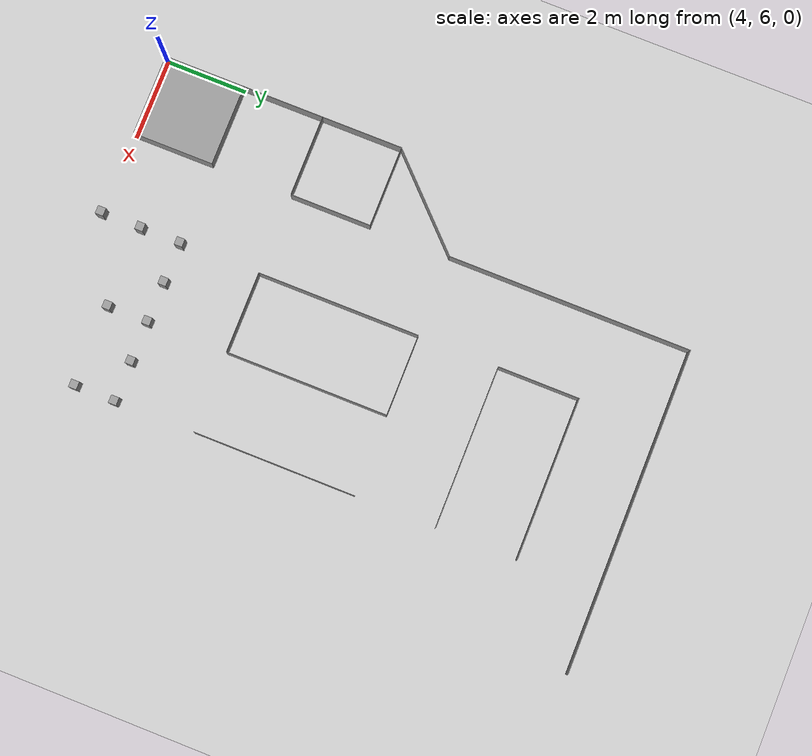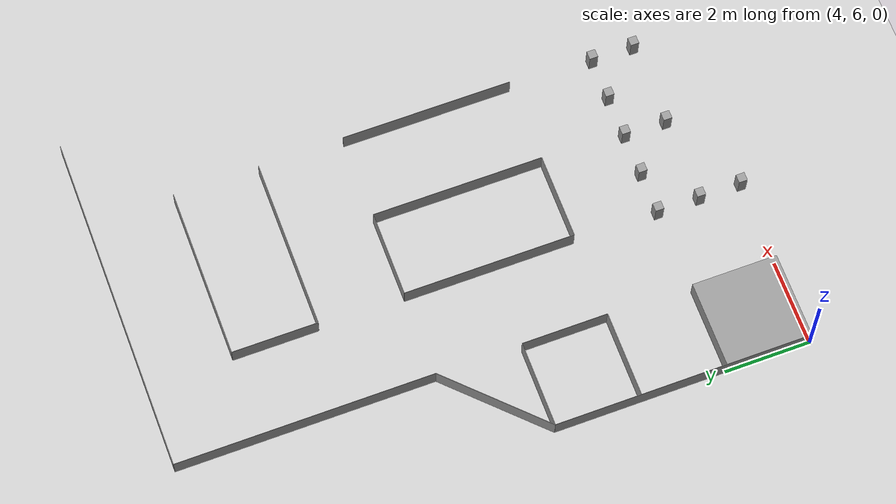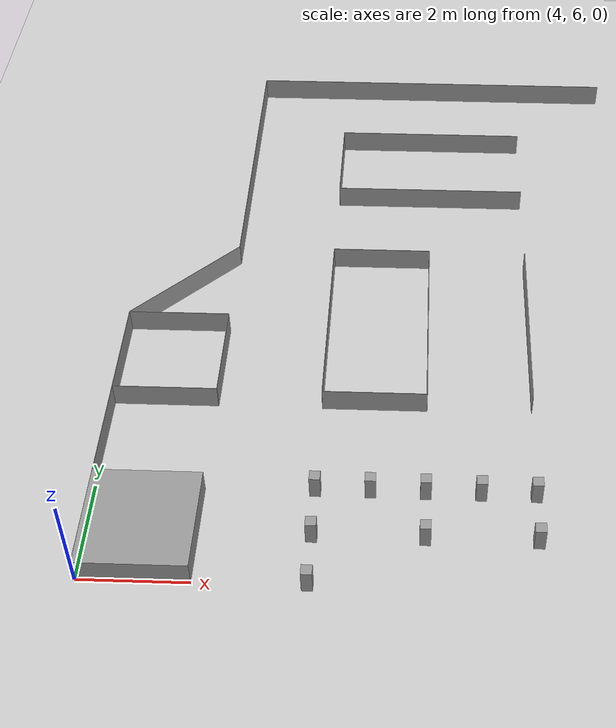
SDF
<sdf version="1.6">
 <world name="default">
  <model name="box_97">
   <pose>5.0 7.0 0.25 0 0 0</pose>
   <link name="link">
    <inertial>
     <mass>1</mass>
     <inertia><ixx>0</ixx><ixy>0</ixy><ixz>0</ixz><iyy>0</iyy><iyz>0</iyz><izz>0</izz></inertia>
    </inertial>
    <collision name="collision"><geometry><box><size>2.0 2.0 0.5</size></box></geometry></collision>
    <visual name="visual">
     <geometry><box><size>2.0 2.0 0.5</size></box></geometry>
     <material>
      <script><name>Gazebo/Grey</name><uri>file://media/materials/scripts/gazebo.material</uri></script>
     </material>
    </visual>
   </link>
   <static>1</static>
  </model>
  <model name="box_77">
   <pose>12.0 7.0 0.25 0 0 0</pose>
   <link name="link">
    <inertial>
     <mass>1</mass>
     <inertia><ixx>0</ixx><ixy>0</ixy><ixz>0</ixz><iyy>0</iyy><iyz>0</iyz><izz>0</izz></inertia>
    </inertial>
    <collision name="collision"><geometry><box><size>0.2 0.2 0.5</size></box></geometry></collision>
    <visual name="visual">
     <geometry><box><size>0.2 0.2 0.5</size></box></geometry>
     <material>
      <script><name>Gazebo/Grey</name><uri>file://media/materials/scripts/gazebo.material</uri></script>
     </material>
    </visual>
   </link>
   <static>1</static>
  </model>
  <model name="box_76">
   <pose>10.0 7.0 0.25 0 0 0</pose>
   <link name="link">
    <inertial>
     <mass>1</mass>
     <inertia><ixx>0</ixx><ixy>0</ixy><ixz>0</ixz><iyy>0</iyy><iyz>0</iyz><izz>0</izz></inertia>
    </inertial>
    <collision name="collision"><geometry><box><size>0.2 0.2 0.5</size></box></geometry></collision>
    <visual name="visual">
     <geometry><box><size>0.2 0.2 0.5</size></box></geometry>
     <material>
      <script><name>Gazebo/Grey</name><uri>file://media/materials/scripts/gazebo.material</uri></script>
     </material>
    </visual>
   </link>
   <static>1</static>
  </model>
  <model name="box_75">
   <pose>12.0 8.0 0.25 0 0 0</pose>
   <link name="link">
    <inertial>
     <mass>1</mass>
     <inertia><ixx>0</ixx><ixy>0</ixy><ixz>0</ixz><iyy>0</iyy><iyz>0</iyz><izz>0</izz></inertia>
    </inertial>
    <collision name="collision"><geometry><box><size>0.2 0.2 0.5</size></box></geometry></collision>
    <visual name="visual">
     <geometry><box><size>0.2 0.2 0.5</size></box></geometry>
     <material>
      <script><name>Gazebo/Grey</name><uri>file://media/materials/scripts/gazebo.material</uri></script>
     </material>
    </visual>
   </link>
   <static>1</static>
  </model>
  <model name="box_74">
   <pose>11.0 8.0 0.25 0 0 0</pose>
   <link name="link">
    <inertial>
     <mass>1</mass>
     <inertia><ixx>0</ixx><ixy>0</ixy><ixz>0</ixz><iyy>0</iyy><iyz>0</iyz><izz>0</izz></inertia>
    </inertial>
    <collision name="collision"><geometry><box><size>0.2 0.2 0.5</size></box></geometry></collision>
    <visual name="visual">
     <geometry><box><size>0.2 0.2 0.5</size></box></geometry>
     <material>
      <script><name>Gazebo/Grey</name><uri>file://media/materials/scripts/gazebo.material</uri></script>
     </material>
    </visual>
   </link>
   <static>1</static>
  </model>
  <model name="box_73">
   <pose>10.0 8.0 0.25 0 0 0</pose>
   <link name="link">
    <inertial>
     <mass>1</mass>
     <inertia><ixx>0</ixx><ixy>0</ixy><ixz>0</ixz><iyy>0</iyy><iyz>0</iyz><izz>0</izz></inertia>
    </inertial>
    <collision name="collision"><geometry><box><size>0.2 0.2 0.5</size></box></geometry></collision>
    <visual name="visual">
     <geometry><box><size>0.2 0.2 0.5</size></box></geometry>
     <material>
      <script><name>Gazebo/Grey</name><uri>file://media/materials/scripts/gazebo.material</uri></script>
     </material>
    </visual>
   </link>
   <static>1</static>
  </model>
  <model name="box_38">
   <pose>8.0 6.0 0.25 0 0 0</pose>
   <link name="link">
    <inertial>
     <mass>1</mass>
     <inertia><ixx>0</ixx><ixy>0</ixy><ixz>0</ixz><iyy>0</iyy><iyz>0</iyz><izz>0</izz></inertia>
    </inertial>
    <collision name="collision"><geometry><box><size>0.2 0.2 0.5</size></box></geometry></collision>
    <visual name="visual">
     <geometry><box><size>0.2 0.2 0.5</size></box></geometry>
     <material>
      <script><name>Gazebo/Grey</name><uri>file://media/materials/scripts/gazebo.material</uri></script>
     </material>
    </visual>
   </link>
   <static>1</static>
  </model>
  <model name="box_37">
   <pose>10.0 7.0 0.25 0 0 0</pose>
   <link name="link">
    <inertial>
     <mass>1</mass>
     <inertia><ixx>0</ixx><ixy>0</ixy><ixz>0</ixz><iyy>0</iyy><iyz>0</iyz><izz>0</izz></inertia>
    </inertial>
    <collision name="collision"><geometry><box><size>0.2 0.2 0.5</size></box></geometry></collision>
    <visual name="visual">
     <geometry><box><size>0.2 0.2 0.5</size></box></geometry>
     <material>
      <script><name>Gazebo/Grey</name><uri>file://media/materials/scripts/gazebo.material</uri></script>
     </material>
    </visual>
   </link>
   <static>1</static>
  </model>
  <model name="box_36">
   <pose>8.0 7.0 0.25 0 0 0</pose>
   <link name="link">
    <inertial>
     <mass>1</mass>
     <inertia><ixx>0</ixx><ixy>0</ixy><ixz>0</ixz><iyy>0</iyy><iyz>0</iyz><izz>0</izz></inertia>
    </inertial>
    <collision name="collision"><geometry><box><size>0.2 0.2 0.5</size></box></geometry></collision>
    <visual name="visual">
     <geometry><box><size>0.2 0.2 0.5</size></box></geometry>
     <material>
      <script><name>Gazebo/Grey</name><uri>file://media/materials/scripts/gazebo.material</uri></script>
     </material>
    </visual>
   </link>
   <static>1</static>
  </model>
  <model name="box_35">
   <pose>10.0 8.0 0.25 0 0 0</pose>
   <link name="link">
    <inertial>
     <mass>1</mass>
     <inertia><ixx>0</ixx><ixy>0</ixy><ixz>0</ixz><iyy>0</iyy><iyz>0</iyz><izz>0</izz></inertia>
    </inertial>
    <collision name="collision"><geometry><box><size>0.2 0.2 0.5</size></box></geometry></collision>
    <visual name="visual">
     <geometry><box><size>0.2 0.2 0.5</size></box></geometry>
     <material>
      <script><name>Gazebo/Grey</name><uri>file://media/materials/scripts/gazebo.material</uri></script>
     </material>
    </visual>
   </link>
   <static>1</static>
  </model>
  <model name="box_34">
   <pose>9.0 8.0 0.25 0 0 0</pose>
   <link name="link">
    <inertial>
     <mass>1</mass>
     <inertia><ixx>0</ixx><ixy>0</ixy><ixz>0</ixz><iyy>0</iyy><iyz>0</iyz><izz>0</izz></inertia>
    </inertial>
    <collision name="collision"><geometry><box><size>0.2 0.2 0.5</size></box></geometry></collision>
    <visual name="visual">
     <geometry><box><size>0.2 0.2 0.5</size></box></geometry>
     <material>
      <script><name>Gazebo/Grey</name><uri>file://media/materials/scripts/gazebo.material</uri></script>
     </material>
    </visual>
   </link>
   <static>1</static>
  </model>
  <model name="box_33">
   <pose>8.0 8.0 0.25 0 0 0</pose>
   <link name="link">
    <inertial>
     <mass>1</mass>
     <inertia><ixx>0</ixx><ixy>0</ixy><ixz>0</ixz><iyy>0</iyy><iyz>0</iyz><izz>0</izz></inertia>
    </inertial>
    <collision name="collision"><geometry><box><size>0.2 0.2 0.5</size></box></geometry></collision>
    <visual name="visual">
     <geometry><box><size>0.2 0.2 0.5</size></box></geometry>
     <material>
      <script><name>Gazebo/Grey</name><uri>file://media/materials/scripts/gazebo.material</uri></script>
     </material>
    </visual>
   </link>
   <static>1</static>
  </model>
  <model name="box_32">
   <pose>5.0 10.0 0.25 0 0 -0.0</pose>
   <link name="link">
    <inertial>
     <mass>1</mass>
     <inertia><ixx>0</ixx><ixy>0</ixy><ixz>0</ixz><iyy>0</iyy><iyz>0</iyz><izz>0</izz></inertia>
    </inertial>
    <collision name="collision"><geometry><box><size>2.0 0.01 0.5</size></box></geometry></collision>
    <visual name="visual">
     <geometry><box><size>2.0 0.01 0.5</size></box></geometry>
     <material>
      <script><name>Gazebo/Grey</name><uri>file://media/materials/scripts/gazebo.material</uri></script>
     </material>
    </visual>
   </link>
   <static>1</static>
  </model>
  <model name="box_31">
   <pose>6.0 11.0 0.25 0 0 1.5707963267948966</pose>
   <link name="link">
    <inertial>
     <mass>1</mass>
     <inertia><ixx>0</ixx><ixy>0</ixy><ixz>0</ixz><iyy>0</iyy><iyz>0</iyz><izz>0</izz></inertia>
    </inertial>
    <collision name="collision"><geometry><box><size>2.0 0.01 0.5</size></box></geometry></collision>
    <visual name="visual">
     <geometry><box><size>2.0 0.01 0.5</size></box></geometry>
     <material>
      <script><name>Gazebo/Grey</name><uri>file://media/materials/scripts/gazebo.material</uri></script>
     </material>
    </visual>
   </link>
   <static>1</static>
  </model>
  <model name="box_30">
   <pose>5.0 12.0 0.25 0 0 -3.141592653589793</pose>
   <link name="link">
    <inertial>
     <mass>1</mass>
     <inertia><ixx>0</ixx><ixy>0</ixy><ixz>0</ixz><iyy>0</iyy><iyz>0</iyz><izz>0</izz></inertia>
    </inertial>
    <collision name="collision"><geometry><box><size>2.0 0.01 0.5</size></box></geometry></collision>
    <visual name="visual">
     <geometry><box><size>2.0 0.01 0.5</size></box></geometry>
     <material>
      <script><name>Gazebo/Grey</name><uri>file://media/materials/scripts/gazebo.material</uri></script>
     </material>
    </visual>
   </link>
   <static>1</static>
  </model>
  <model name="box_29">
   <pose>10.0 18.0 0.25 0 0 -0.0</pose>
   <link name="link">
    <inertial>
     <mass>1</mass>
     <inertia><ixx>0</ixx><ixy>0</ixy><ixz>0</ixz><iyy>0</iyy><iyz>0</iyz><izz>0</izz></inertia>
    </inertial>
    <collision name="collision"><geometry><box><size>4.0 0.01 0.5</size></box></geometry></collision>
    <visual name="visual">
     <geometry><box><size>4.0 0.01 0.5</size></box></geometry>
     <material>
      <script><name>Gazebo/Grey</name><uri>file://media/materials/scripts/gazebo.material</uri></script>
     </material>
    </visual>
   </link>
   <static>1</static>
  </model>
  <model name="box_27">
   <pose>10.0 16.0 0.25 0 0 -3.141592653589793</pose>
   <link name="link">
    <inertial>
     <mass>1</mass>
     <inertia><ixx>0</ixx><ixy>0</ixy><ixz>0</ixz><iyy>0</iyy><iyz>0</iyz><izz>0</izz></inertia>
    </inertial>
    <collision name="collision"><geometry><box><size>4.0 0.01 0.5</size></box></geometry></collision>
    <visual name="visual">
     <geometry><box><size>4.0 0.01 0.5</size></box></geometry>
     <material>
      <script><name>Gazebo/Grey</name><uri>file://media/materials/scripts/gazebo.material</uri></script>
     </material>
    </visual>
   </link>
   <static>1</static>
  </model>
  <model name="box_26">
   <pose>8.0 17.0 0.25 0 0 1.5707963267948966</pose>
   <link name="link">
    <inertial>
     <mass>1</mass>
     <inertia><ixx>0</ixx><ixy>0</ixy><ixz>0</ixz><iyy>0</iyy><iyz>0</iyz><izz>0</izz></inertia>
    </inertial>
    <collision name="collision"><geometry><box><size>2.0 0.01 0.5</size></box></geometry></collision>
    <visual name="visual">
     <geometry><box><size>2.0 0.01 0.5</size></box></geometry>
     <material>
      <script><name>Gazebo/Grey</name><uri>file://media/materials/scripts/gazebo.material</uri></script>
     </material>
    </visual>
   </link>
   <static>1</static>
  </model>
  <model name="box_25">
   <pose>9.0 14.0 0.25 0 0 -0.0</pose>
   <link name="link">
    <inertial>
     <mass>1</mass>
     <inertia><ixx>0</ixx><ixy>0</ixy><ixz>0</ixz><iyy>0</iyy><iyz>0</iyz><izz>0</izz></inertia>
    </inertial>
    <collision name="collision"><geometry><box><size>2.0 0.01 0.5</size></box></geometry></collision>
    <visual name="visual">
     <geometry><box><size>2.0 0.01 0.5</size></box></geometry>
     <material>
      <script><name>Gazebo/Grey</name><uri>file://media/materials/scripts/gazebo.material</uri></script>
     </material>
    </visual>
   </link>
   <static>1</static>
  </model>
  <model name="box_24">
   <pose>10.0 12.0 0.25 0 0 -1.5707963267948966</pose>
   <link name="link">
    <inertial>
     <mass>1</mass>
     <inertia><ixx>0</ixx><ixy>0</ixy><ixz>0</ixz><iyy>0</iyy><iyz>0</iyz><izz>0</izz></inertia>
    </inertial>
    <collision name="collision"><geometry><box><size>4.0 0.01 0.5</size></box></geometry></collision>
    <visual name="visual">
     <geometry><box><size>4.0 0.01 0.5</size></box></geometry>
     <material>
      <script><name>Gazebo/Grey</name><uri>file://media/materials/scripts/gazebo.material</uri></script>
     </material>
    </visual>
   </link>
   <static>1</static>
  </model>
  <model name="box_23">
   <pose>9.0 10.0 0.25 0 0 -3.141592653589793</pose>
   <link name="link">
    <inertial>
     <mass>1</mass>
     <inertia><ixx>0</ixx><ixy>0</ixy><ixz>0</ixz><iyy>0</iyy><iyz>0</iyz><izz>0</izz></inertia>
    </inertial>
    <collision name="collision"><geometry><box><size>2.0 0.01 0.5</size></box></geometry></collision>
    <visual name="visual">
     <geometry><box><size>2.0 0.01 0.5</size></box></geometry>
     <material>
      <script><name>Gazebo/Grey</name><uri>file://media/materials/scripts/gazebo.material</uri></script>
     </material>
    </visual>
   </link>
   <static>1</static>
  </model>
  <model name="box_22">
   <pose>8.0 12.0 0.25 0 0 1.5707963267948966</pose>
   <link name="link">
    <inertial>
     <mass>1</mass>
     <inertia><ixx>0</ixx><ixy>0</ixy><ixz>0</ixz><iyy>0</iyy><iyz>0</iyz><izz>0</izz></inertia>
    </inertial>
    <collision name="collision"><geometry><box><size>4.0 0.01 0.5</size></box></geometry></collision>
    <visual name="visual">
     <geometry><box><size>4.0 0.01 0.5</size></box></geometry>
     <material>
      <script><name>Gazebo/Grey</name><uri>file://media/materials/scripts/gazebo.material</uri></script>
     </material>
    </visual>
   </link>
   <static>1</static>
  </model>
  <model name="box_16">
   <pose>12.0 12.0 0.25 0 0 1.5707963267948966</pose>
   <link name="link">
    <inertial>
     <mass>1</mass>
     <inertia><ixx>0</ixx><ixy>0</ixy><ixz>0</ixz><iyy>0</iyy><iyz>0</iyz><izz>0</izz></inertia>
    </inertial>
    <collision name="collision"><geometry><box><size>4.0 0.01 0.5</size></box></geometry></collision>
    <visual name="visual">
     <geometry><box><size>4.0 0.01 0.5</size></box></geometry>
     <material>
      <script><name>Gazebo/Grey</name><uri>file://media/materials/scripts/gazebo.material</uri></script>
     </material>
    </visual>
   </link>
   <static>1</static>
  </model>
  <model name="box_6">
   <pose>10.0 20.0 0.25 0 0 -3.141592653589793</pose>
   <link name="link">
    <inertial>
     <mass>1</mass>
     <inertia><ixx>0</ixx><ixy>0</ixy><ixz>0</ixz><iyy>0</iyy><iyz>0</iyz><izz>0</izz></inertia>
    </inertial>
    <collision name="collision"><geometry><box><size>8.0 0.01 0.5</size></box></geometry></collision>
    <visual name="visual">
     <geometry><box><size>8.0 0.01 0.5</size></box></geometry>
     <material>
      <script><name>Gazebo/Grey</name><uri>file://media/materials/scripts/gazebo.material</uri></script>
     </material>
    </visual>
   </link>
   <static>1</static>
  </model>
  <model name="box_3">
   <pose>6.0 17.0 0.25 0 0 -1.5707963267948966</pose>
   <link name="link">
    <inertial>
     <mass>1</mass>
     <inertia><ixx>0</ixx><ixy>0</ixy><ixz>0</ixz><iyy>0</iyy><iyz>0</iyz><izz>0</izz></inertia>
    </inertial>
    <collision name="collision"><geometry><box><size>6.0 0.01 0.5</size></box></geometry></collision>
    <visual name="visual">
     <geometry><box><size>6.0 0.01 0.5</size></box></geometry>
     <material>
      <script><name>Gazebo/Grey</name><uri>file://media/materials/scripts/gazebo.material</uri></script>
     </material>
    </visual>
   </link>
   <static>1</static>
  </model>
  <model name="box_2">
   <pose>5.0 13.0 0.25 0 0 -2.356194490192345</pose>
   <link name="link">
    <inertial>
     <mass>1</mass>
     <inertia><ixx>0</ixx><ixy>0</ixy><ixz>0</ixz><iyy>0</iyy><iyz>0</iyz><izz>0</izz></inertia>
    </inertial>
    <collision name="collision">
     <geometry><box><size>2.8284271247461903 0.01 0.5</size></box></geometry>
    </collision>
    <visual name="visual">
     <geometry><box><size>2.8284271247461903 0.01 0.5</size></box></geometry>
     <material>
      <script><name>Gazebo/Grey</name><uri>file://media/materials/scripts/gazebo.material</uri></script>
     </material>
    </visual>
   </link>
   <static>1</static>
  </model>
  <model name="box_1">
   <pose>4.0 9.0 0.25 0 0 -1.5707963267948966</pose>
   <link name="link">
    <inertial>
     <mass>1</mass>
     <inertia><ixx>0</ixx><ixy>0</ixy><ixz>0</ixz><iyy>0</iyy><iyz>0</iyz><izz>0</izz></inertia>
    </inertial>
    <collision name="collision"><geometry><box><size>6.0 0.01 0.5</size></box></geometry></collision>
    <visual name="visual">
     <geometry><box><size>6.0 0.01 0.5</size></box></geometry>
     <material>
      <script><name>Gazebo/Grey</name><uri>file://media/materials/scripts/gazebo.material</uri></script>
     </material>
    </visual>
   </link>
   <static>1</static>
  </model>
  <model name="ground_plane">
   <static>1</static>
   <link name="link">
    <collision name="collision">
     <geometry><plane><normal>0 0 1</normal><size>100 100</size></plane></geometry>
     <surface>
      <contact><collide_bitmask>65535</collide_bitmask></contact>
      <friction><ode><mu>100</mu><mu2>50</mu2></ode></friction>
     </surface>
    </collision>
    <visual name="visual">
     <cast_shadows>0</cast_shadows>
     <geometry><plane><normal>0 0 1</normal><size>100 100</size></plane></geometry>
     <material>
      <script><uri>file://media/materials/scripts/gazebo.material</uri><name>Gazebo/Grey</name></script>
     </material>
    </visual>
   </link>
  </model>
 </world>
</sdf>
